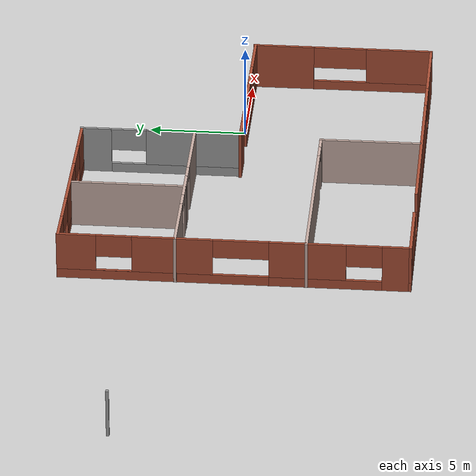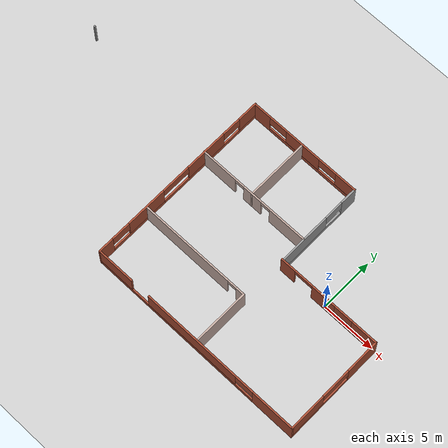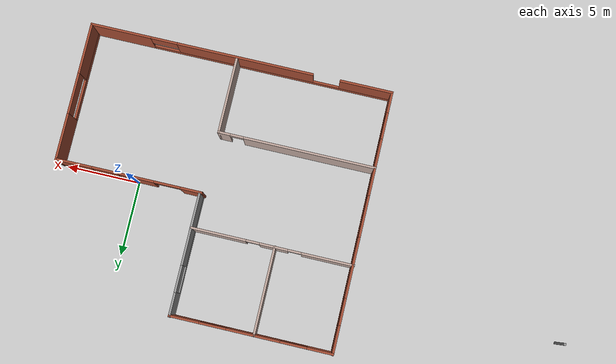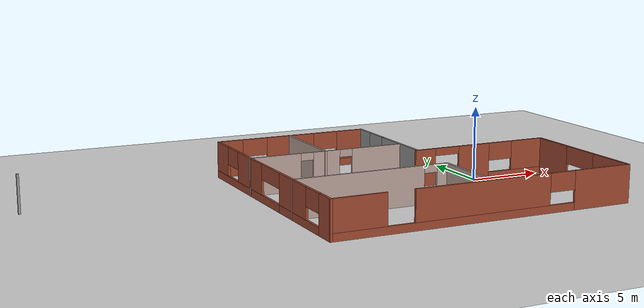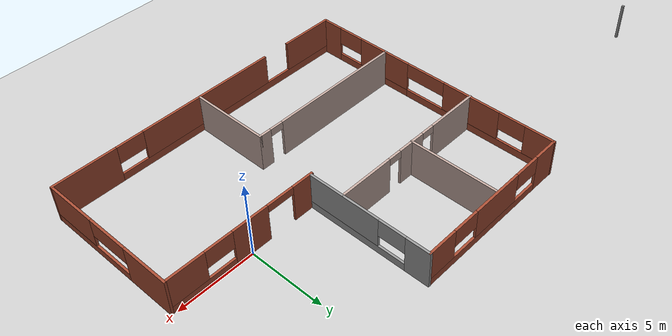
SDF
<sdf version="1.6">
 <world name="default">
  <model name="ground_plane">
   <static>1</static>
   <link name="link">
    <collision name="collision">
     <geometry><plane><normal>0 0 1</normal><size>100 100</size></plane></geometry>
     <surface><friction><ode><mu>100</mu><mu2>50</mu2></ode></friction></surface>
    </collision>
    <visual name="visual">
     <cast_shadows>0</cast_shadows>
     <geometry><plane><normal>0 0 1</normal><size>100 100</size></plane></geometry>
     <material>
      <script><uri>file://media/materials/scripts/gazebo.material</uri><name>Gazebo/Grey</name></script>
     </material>
    </visual>
   </link>
  </model>
  <model name="myoffice">
   <pose>-12.2241 -0.674506 0 0 -0 0</pose>
   <link name="Wall_21">
    <pose>12.5709 0.560445 0 0 -0 0</pose>
    <visual name="Wall_21_Visual_0">
     <pose>-4.25338 0 1.25 0 -0 0</pose>
     <geometry><box><size>1.49323 0.15 2.5</size></box></geometry>
     <material>
      <script><uri>file://media/materials/scripts/gazebo.material</uri><name>Gazebo/Bricks</name></script>
      <ambient>1 1 1 1</ambient>
     </material>
     <meta><layer>0</layer></meta>
    </visual>
    <collision name="Wall_21_Collision_0">
     <geometry><box><size>1.49323 0.15 2.5</size></box></geometry>
     <pose>-4.25338 0 1.25 0 -0 0</pose>
    </collision>
    <visual name="Wall_21_Visual_1">
     <pose>-0.514467 0 1.25 0 -0 0</pose>
     <geometry><box><size>2.3846 0.15 2.5</size></box></geometry>
     <material>
      <script><uri>file://media/materials/scripts/gazebo.material</uri><name>Gazebo/Bricks</name></script>
      <ambient>1 1 1 1</ambient>
     </material>
     <meta><layer>0</layer></meta>
    </visual>
    <collision name="Wall_21_Collision_1">
     <geometry><box><size>2.3846 0.15 2.5</size></box></geometry>
     <pose>-0.514467 0 1.25 0 -0 0</pose>
    </collision>
    <visual name="Wall_21_Visual_2">
     <pose>2.83892 0 0.25 0 -0 0</pose>
     <geometry><box><size>4.32217 0.15 0.5</size></box></geometry>
     <material>
      <script><uri>file://media/materials/scripts/gazebo.material</uri><name>Gazebo/Bricks</name></script>
      <ambient>1 1 1 1</ambient>
     </material>
     <meta><layer>0</layer></meta>
    </visual>
    <collision name="Wall_21_Collision_2">
     <geometry><box><size>4.32217 0.15 0.5</size></box></geometry>
     <pose>2.83892 0 0.25 0 -0 0</pose>
    </collision>
    <visual name="Wall_21_Visual_3">
     <pose>3.73892 0 1.5 0 -0 0</pose>
     <geometry><box><size>2.52217 0.15 2</size></box></geometry>
     <material>
      <script><uri>file://media/materials/scripts/gazebo.material</uri><name>Gazebo/Bricks</name></script>
      <ambient>1 1 1 1</ambient>
     </material>
     <meta><layer>0</layer></meta>
    </visual>
    <collision name="Wall_21_Collision_3">
     <geometry><box><size>2.52217 0.15 2</size></box></geometry>
     <pose>3.73892 0 1.5 0 -0 0</pose>
    </collision>
    <visual name="Wall_21_Visual_4">
     <pose>1.57783 0 1.9 0 -0 0</pose>
     <geometry><box><size>1.8 0.15 1.2</size></box></geometry>
     <material>
      <script><uri>file://media/materials/scripts/gazebo.material</uri><name>Gazebo/Bricks</name></script>
      <ambient>1 1 1 1</ambient>
     </material>
     <meta><layer>0</layer></meta>
    </visual>
    <collision name="Wall_21_Collision_4">
     <geometry><box><size>1.8 0.15 1.2</size></box></geometry>
     <pose>1.57783 0 1.9 0 -0 0</pose>
    </collision>
    <visual name="Wall_21_Visual_5">
     <pose>-2.60677 0 2.25 0 -0 0</pose>
     <geometry><box><size>1.8 0.15 0.5</size></box></geometry>
     <material>
      <script><uri>file://media/materials/scripts/gazebo.material</uri><name>Gazebo/Bricks</name></script>
      <ambient>1 1 1 1</ambient>
     </material>
     <meta><layer>0</layer></meta>
    </visual>
    <collision name="Wall_21_Collision_5">
     <geometry><box><size>1.8 0.15 0.5</size></box></geometry>
     <pose>-2.60677 0 2.25 0 -0 0</pose>
    </collision>
   </link>
   <link name="Wall_22">
    <pose>17.4959 -4.11456 0 0 0 -1.5708</pose>
    <visual name="Wall_22_Visual_0">
     <pose>-3.16191 0 1.25 0 -0 0</pose>
     <geometry><box><size>3.23784 0.15 2.5</size></box></geometry>
     <material>
      <script><uri>file://media/materials/scripts/gazebo.material</uri><name>Gazebo/Bricks</name></script>
      <ambient>1 1 1 1</ambient>
     </material>
     <meta><layer>0</layer></meta>
    </visual>
    <collision name="Wall_22_Collision_0">
     <geometry><box><size>3.23784 0.15 2.5</size></box></geometry>
     <pose>-3.16191 0 1.25 0 -0 0</pose>
    </collision>
    <visual name="Wall_22_Visual_1">
     <pose>1.61892 0 0.25 0 -0 0</pose>
     <geometry><box><size>6.32383 0.15 0.5</size></box></geometry>
     <material>
      <script><uri>file://media/materials/scripts/gazebo.material</uri><name>Gazebo/Bricks</name></script>
      <ambient>1 1 1 1</ambient>
     </material>
     <meta><layer>0</layer></meta>
    </visual>
    <collision name="Wall_22_Collision_1">
     <geometry><box><size>6.32383 0.15 0.5</size></box></geometry>
     <pose>1.61892 0 0.25 0 -0 0</pose>
    </collision>
    <visual name="Wall_22_Visual_2">
     <pose>3.01892 0 1.5 0 -0 0</pose>
     <geometry><box><size>3.52383 0.15 2</size></box></geometry>
     <material>
      <script><uri>file://media/materials/scripts/gazebo.material</uri><name>Gazebo/Bricks</name></script>
      <ambient>1 1 1 1</ambient>
     </material>
     <meta><layer>0</layer></meta>
    </visual>
    <collision name="Wall_22_Collision_2">
     <geometry><box><size>3.52383 0.15 2</size></box></geometry>
     <pose>3.01892 0 1.5 0 -0 0</pose>
    </collision>
    <visual name="Wall_22_Visual_3">
     <pose>-0.142992 0 1.9 0 -0 0</pose>
     <geometry><box><size>2.8 0.15 1.2</size></box></geometry>
     <material>
      <script><uri>file://media/materials/scripts/gazebo.material</uri><name>Gazebo/Bricks</name></script>
      <ambient>1 1 1 1</ambient>
     </material>
     <meta><layer>0</layer></meta>
    </visual>
    <collision name="Wall_22_Collision_3">
     <geometry><box><size>2.8 0.15 1.2</size></box></geometry>
     <pose>-0.142992 0 1.9 0 -0 0</pose>
    </collision>
   </link>
   <link name="Wall_23">
    <pose>7.19589 -8.82039 0 0 -0 3.14159</pose>
    <visual name="Wall_23_Visual_0">
     <pose>-8.29614 0 1.25 0 -0 0</pose>
     <geometry><box><size>4.15772 0.15 2.5</size></box></geometry>
     <material>
      <script><uri>file://media/materials/scripts/gazebo.material</uri><name>Gazebo/Bricks</name></script>
      <ambient>1 1 1 1</ambient>
     </material>
     <meta><layer>0</layer></meta>
    </visual>
    <collision name="Wall_23_Collision_0">
     <geometry><box><size>4.15772 0.15 2.5</size></box></geometry>
     <pose>-8.29614 0 1.25 0 -0 0</pose>
    </collision>
    <visual name="Wall_23_Visual_1">
     <pose>2.07886 0 0.25 0 -0 0</pose>
     <geometry><box><size>16.5923 0.15 0.5</size></box></geometry>
     <material>
      <script><uri>file://media/materials/scripts/gazebo.material</uri><name>Gazebo/Bricks</name></script>
      <ambient>1 1 1 1</ambient>
     </material>
     <meta><layer>0</layer></meta>
    </visual>
    <collision name="Wall_23_Collision_1">
     <geometry><box><size>16.5923 0.15 0.5</size></box></geometry>
     <pose>2.07886 0 0.25 0 -0 0</pose>
    </collision>
    <visual name="Wall_23_Visual_2">
     <pose>0.259691 0 1.5 0 -0 0</pose>
     <geometry><box><size>9.35394 0.15 2</size></box></geometry>
     <material>
      <script><uri>file://media/materials/scripts/gazebo.material</uri><name>Gazebo/Bricks</name></script>
      <ambient>1 1 1 1</ambient>
     </material>
     <meta><layer>0</layer></meta>
    </visual>
    <collision name="Wall_23_Collision_2">
     <geometry><box><size>9.35394 0.15 2</size></box></geometry>
     <pose>0.259691 0 1.5 0 -0 0</pose>
    </collision>
    <visual name="Wall_23_Visual_3">
     <pose>8.55583 0 1.5 0 -0 0</pose>
     <geometry><box><size>3.63834 0.15 2</size></box></geometry>
     <material>
      <script><uri>file://media/materials/scripts/gazebo.material</uri><name>Gazebo/Bricks</name></script>
      <ambient>1 1 1 1</ambient>
     </material>
     <meta><layer>0</layer></meta>
    </visual>
    <collision name="Wall_23_Collision_3">
     <geometry><box><size>3.63834 0.15 2</size></box></geometry>
     <pose>8.55583 0 1.5 0 -0 0</pose>
    </collision>
    <visual name="Wall_23_Visual_4">
     <pose>-5.31728 0 1.9 0 -0 0</pose>
     <geometry><box><size>1.8 0.15 1.2</size></box></geometry>
     <material>
      <script><uri>file://media/materials/scripts/gazebo.material</uri><name>Gazebo/Bricks</name></script>
      <ambient>1 1 1 1</ambient>
     </material>
     <meta><layer>0</layer></meta>
    </visual>
    <collision name="Wall_23_Collision_4">
     <geometry><box><size>1.8 0.15 1.2</size></box></geometry>
     <pose>-5.31728 0 1.9 0 -0 0</pose>
    </collision>
    <visual name="Wall_23_Visual_5">
     <pose>4.93666 0 1.9 0 -0 0</pose>
     <geometry><box><size>0.01 0.15 1.2</size></box></geometry>
     <material>
      <script><uri>file://media/materials/scripts/gazebo.material</uri><name>Gazebo/Bricks</name></script>
      <ambient>1 1 1 1</ambient>
     </material>
     <meta><layer>0</layer></meta>
    </visual>
    <collision name="Wall_23_Collision_5">
     <geometry><box><size>0.01 0.15 1.2</size></box></geometry>
     <pose>4.93666 0 1.9 0 -0 0</pose>
    </collision>
   </link>
   <link name="Wall_24">
    <pose>-3.10411 0 0 0 -0 1.5708</pose>
    <visual name="Wall_24_Visual_0">
     <pose>-8.15706 0 1.25 0 -0 0</pose>
     <geometry><box><size>1.47665 0.15 2.5</size></box></geometry>
     <material>
      <script><uri>file://media/materials/scripts/gazebo.material</uri><name>Gazebo/Bricks</name></script>
      <ambient>1 1 1 1</ambient>
     </material>
     <meta><layer>0</layer></meta>
    </visual>
    <collision name="Wall_24_Collision_0">
     <geometry><box><size>1.47665 0.15 2.5</size></box></geometry>
     <pose>-8.15706 0 1.25 0 -0 0</pose>
    </collision>
    <visual name="Wall_24_Visual_1">
     <pose>-4.58531 0 0.25 0 -0 0</pose>
     <geometry><box><size>5.66684 0.15 0.5</size></box></geometry>
     <material>
      <script><uri>file://media/materials/scripts/gazebo.material</uri><name>Gazebo/Bricks</name></script>
      <ambient>1 1 1 1</ambient>
     </material>
     <meta><layer>0</layer></meta>
    </visual>
    <collision name="Wall_24_Collision_1">
     <geometry><box><size>5.66684 0.15 0.5</size></box></geometry>
     <pose>-4.58531 0 0.25 0 -0 0</pose>
    </collision>
    <visual name="Wall_24_Visual_2">
     <pose>3.57175 0 0.25 0 -0 0</pose>
     <geometry><box><size>10.6473 0.15 0.5</size></box></geometry>
     <material>
      <script><uri>file://media/materials/scripts/gazebo.material</uri><name>Gazebo/Bricks</name></script>
      <ambient>1 1 1 1</ambient>
     </material>
     <meta><layer>0</layer></meta>
    </visual>
    <collision name="Wall_24_Collision_2">
     <geometry><box><size>10.6473 0.15 0.5</size></box></geometry>
     <pose>3.57175 0 0.25 0 -0 0</pose>
    </collision>
    <visual name="Wall_24_Visual_3">
     <pose>3.07537 0 1.5 0 -0 0</pose>
     <geometry><box><size>4.05453 0.15 2</size></box></geometry>
     <material>
      <script><uri>file://media/materials/scripts/gazebo.material</uri><name>Gazebo/Bricks</name></script>
      <ambient>1 1 1 1</ambient>
     </material>
     <meta><layer>0</layer></meta>
    </visual>
    <collision name="Wall_24_Collision_3">
     <geometry><box><size>4.05453 0.15 2</size></box></geometry>
     <pose>3.07537 0 1.5 0 -0 0</pose>
    </collision>
    <visual name="Wall_24_Visual_4">
     <pose>7.89901 0 1.5 0 -0 0</pose>
     <geometry><box><size>1.99275 0.15 2</size></box></geometry>
     <material>
      <script><uri>file://media/materials/scripts/gazebo.material</uri><name>Gazebo/Bricks</name></script>
      <ambient>1 1 1 1</ambient>
     </material>
     <meta><layer>0</layer></meta>
    </visual>
    <collision name="Wall_24_Collision_4">
     <geometry><box><size>1.99275 0.15 2</size></box></geometry>
     <pose>7.89901 0 1.5 0 -0 0</pose>
    </collision>
    <visual name="Wall_24_Visual_5">
     <pose>6.00263 0 0.5 0 -0 0</pose>
     <geometry><box><size>1.8 0.15 0.01</size></box></geometry>
     <material>
      <script><uri>file://media/materials/scripts/gazebo.material</uri><name>Gazebo/Bricks</name></script>
      <ambient>1 1 1 1</ambient>
     </material>
     <meta><layer>0</layer></meta>
    </visual>
    <collision name="Wall_24_Collision_5">
     <geometry><box><size>1.8 0.15 0.01</size></box></geometry>
     <pose>6.00263 0 0.5 0 -0 0</pose>
    </collision>
    <visual name="Wall_24_Visual_6">
     <pose>-3.68532 0 1.5 0 -0 0</pose>
     <geometry><box><size>3.86684 0.15 2</size></box></geometry>
     <material>
      <script><uri>file://media/materials/scripts/gazebo.material</uri><name>Gazebo/Bricks</name></script>
      <ambient>1 1 1 1</ambient>
     </material>
     <meta><layer>0</layer></meta>
    </visual>
    <collision name="Wall_24_Collision_6">
     <geometry><box><size>3.86684 0.15 2</size></box></geometry>
     <pose>-3.68532 0 1.5 0 -0 0</pose>
    </collision>
    <visual name="Wall_24_Visual_7">
     <pose>-3.68532 0 1.5 0 -0 0</pose>
     <geometry><box><size>3.86684 0.15 2</size></box></geometry>
     <material>
      <script><uri>file://media/materials/scripts/gazebo.material</uri><name>Gazebo/Bricks</name></script>
      <ambient>1 1 1 1</ambient>
     </material>
     <meta><layer>0</layer></meta>
    </visual>
    <collision name="Wall_24_Collision_7">
     <geometry><box><size>3.86684 0.15 2</size></box></geometry>
     <pose>-3.68532 0 1.5 0 -0 0</pose>
    </collision>
    <visual name="Wall_24_Visual_8">
     <pose>-6.51874 0 1.9 0 -0 0</pose>
     <geometry><box><size>1.8 0.15 1.2</size></box></geometry>
     <material>
      <script><uri>file://media/materials/scripts/gazebo.material</uri><name>Gazebo/Bricks</name></script>
      <ambient>1 1 1 1</ambient>
     </material>
     <meta><layer>0</layer></meta>
    </visual>
    <collision name="Wall_24_Collision_8">
     <geometry><box><size>1.8 0.15 1.2</size></box></geometry>
     <pose>-6.51874 0 1.9 0 -0 0</pose>
    </collision>
    <visual name="Wall_24_Visual_9">
     <pose>6.00263 0 1.9 0 -0 0</pose>
     <geometry><box><size>1.8 0.15 1.2</size></box></geometry>
     <material>
      <script><uri>file://media/materials/scripts/gazebo.material</uri><name>Gazebo/Bricks</name></script>
      <ambient>1 1 1 1</ambient>
     </material>
     <meta><layer>0</layer></meta>
    </visual>
    <collision name="Wall_24_Collision_9">
     <geometry><box><size>1.8 0.15 1.2</size></box></geometry>
     <pose>6.00263 0 1.9 0 -0 0</pose>
    </collision>
    <visual name="Wall_24_Visual_10">
     <pose>-0.351894 0 2 0 -0 0</pose>
     <geometry><box><size>2.8 0.15 1</size></box></geometry>
     <material>
      <script><uri>file://media/materials/scripts/gazebo.material</uri><name>Gazebo/Bricks</name></script>
      <ambient>1 1 1 1</ambient>
     </material>
     <meta><layer>0</layer></meta>
    </visual>
    <collision name="Wall_24_Collision_10">
     <geometry><box><size>2.8 0.15 1</size></box></geometry>
     <pose>-0.351894 0 2 0 -0 0</pose>
    </collision>
    <visual name="Wall_24_Visual_11">
     <pose>-0.351894 0 2 0 -0 0</pose>
     <geometry><box><size>2.8 0.15 1</size></box></geometry>
     <material>
      <script><uri>file://media/materials/scripts/gazebo.material</uri><name>Gazebo/Bricks</name></script>
      <ambient>1 1 1 1</ambient>
     </material>
     <meta><layer>0</layer></meta>
    </visual>
    <collision name="Wall_24_Collision_11">
     <geometry><box><size>2.8 0.15 1</size></box></geometry>
     <pose>-0.351894 0 2 0 -0 0</pose>
    </collision>
   </link>
   <link name="Wall_25">
    <pose>2.32089 8.8 0 0 -0 0</pose>
    <visual name="Wall_25_Visual_0">
     <pose>-4.60586 0 1.25 0 -0 0</pose>
     <geometry><box><size>1.78828 0.15 2.5</size></box></geometry>
     <material>
      <script><uri>file://media/materials/scripts/gazebo.material</uri><name>Gazebo/Bricks</name></script>
      <ambient>1 1 1 1</ambient>
     </material>
     <meta><layer>0</layer></meta>
    </visual>
    <collision name="Wall_25_Collision_0">
     <geometry><box><size>1.78828 0.15 2.5</size></box></geometry>
     <pose>-4.60586 0 1.25 0 -0 0</pose>
    </collision>
    <visual name="Wall_25_Visual_1">
     <pose>0.894142 0 0.25 0 -0 0</pose>
     <geometry><box><size>9.21171 0.15 0.5</size></box></geometry>
     <material>
      <script><uri>file://media/materials/scripts/gazebo.material</uri><name>Gazebo/Bricks</name></script>
      <ambient>1 1 1 1</ambient>
     </material>
     <meta><layer>0</layer></meta>
    </visual>
    <collision name="Wall_25_Collision_1">
     <geometry><box><size>9.21171 0.15 0.5</size></box></geometry>
     <pose>0.894142 0 0.25 0 -0 0</pose>
    </collision>
    <visual name="Wall_25_Visual_2">
     <pose>-0.128131 0 1.5 0 -0 0</pose>
     <geometry><box><size>3.56717 0.15 2</size></box></geometry>
     <material>
      <script><uri>file://media/materials/scripts/gazebo.material</uri><name>Gazebo/Bricks</name></script>
      <ambient>1 1 1 1</ambient>
     </material>
     <meta><layer>0</layer></meta>
    </visual>
    <collision name="Wall_25_Collision_2">
     <geometry><box><size>3.56717 0.15 2</size></box></geometry>
     <pose>-0.128131 0 1.5 0 -0 0</pose>
    </collision>
    <visual name="Wall_25_Visual_3">
     <pose>4.47773 0 1.5 0 -0 0</pose>
     <geometry><box><size>2.04455 0.15 2</size></box></geometry>
     <material>
      <script><uri>file://media/materials/scripts/gazebo.material</uri><name>Gazebo/Bricks</name></script>
      <ambient>1 1 1 1</ambient>
     </material>
     <meta><layer>0</layer></meta>
    </visual>
    <collision name="Wall_25_Collision_3">
     <geometry><box><size>2.04455 0.15 2</size></box></geometry>
     <pose>4.47773 0 1.5 0 -0 0</pose>
    </collision>
    <visual name="Wall_25_Visual_4">
     <pose>-2.81171 0 1.9 0 -0 0</pose>
     <geometry><box><size>1.8 0.15 1.2</size></box></geometry>
     <material>
      <script><uri>file://media/materials/scripts/gazebo.material</uri><name>Gazebo/Bricks</name></script>
      <ambient>1 1 1 1</ambient>
     </material>
     <meta><layer>0</layer></meta>
    </visual>
    <collision name="Wall_25_Collision_4">
     <geometry><box><size>1.8 0.15 1.2</size></box></geometry>
     <pose>-2.81171 0 1.9 0 -0 0</pose>
    </collision>
    <visual name="Wall_25_Visual_5">
     <pose>2.55545 0 1.9 0 -0 0</pose>
     <geometry><box><size>1.8 0.15 1.2</size></box></geometry>
     <material>
      <script><uri>file://media/materials/scripts/gazebo.material</uri><name>Gazebo/Bricks</name></script>
      <ambient>1 1 1 1</ambient>
     </material>
     <meta><layer>0</layer></meta>
    </visual>
    <collision name="Wall_25_Collision_5">
     <geometry><box><size>1.8 0.15 1.2</size></box></geometry>
     <pose>2.55545 0 1.9 0 -0 0</pose>
    </collision>
   </link>
   <link name="Wall_26">
    <pose>7.74589 4.75 0 0 0 -1.5708</pose>
    <visual name="Wall_26_Visual_0">
     <pose>-3.32861 0 1.25 0 -0 0</pose>
     <geometry><box><size>1.63356 0.15 2.5</size></box></geometry>
     <material>
      <script><uri>file://media/materials/scripts/gazebo.material</uri><name>Gazebo/Grey</name></script>
      <ambient>1 1 1 1</ambient>
     </material>
     <meta><layer>0</layer></meta>
    </visual>
    <collision name="Wall_26_Collision_0">
     <geometry><box><size>1.63356 0.15 2.5</size></box></geometry>
     <pose>-3.32861 0 1.25 0 -0 0</pose>
    </collision>
    <visual name="Wall_26_Visual_1">
     <pose>0.816778 0 0.25 0 -0 0</pose>
     <geometry><box><size>6.65722 0.15 0.5</size></box></geometry>
     <material>
      <script><uri>file://media/materials/scripts/gazebo.material</uri><name>Gazebo/Grey</name></script>
      <ambient>1 1 1 1</ambient>
     </material>
     <meta><layer>0</layer></meta>
    </visual>
    <collision name="Wall_26_Collision_1">
     <geometry><box><size>6.65722 0.15 0.5</size></box></geometry>
     <pose>0.816778 0 0.25 0 -0 0</pose>
    </collision>
    <visual name="Wall_26_Visual_2">
     <pose>1.71678 0 1.5 0 -0 0</pose>
     <geometry><box><size>4.85722 0.15 2</size></box></geometry>
     <material>
      <script><uri>file://media/materials/scripts/gazebo.material</uri><name>Gazebo/Grey</name></script>
      <ambient>1 1 1 1</ambient>
     </material>
     <meta><layer>0</layer></meta>
    </visual>
    <collision name="Wall_26_Collision_2">
     <geometry><box><size>4.85722 0.15 2</size></box></geometry>
     <pose>1.71678 0 1.5 0 -0 0</pose>
    </collision>
    <visual name="Wall_26_Visual_3">
     <pose>-1.61183 0 1.9 0 -0 0</pose>
     <geometry><box><size>1.8 0.15 1.2</size></box></geometry>
     <material>
      <script><uri>file://media/materials/scripts/gazebo.material</uri><name>Gazebo/Grey</name></script>
      <ambient>1 1 1 1</ambient>
     </material>
     <meta><layer>0</layer></meta>
    </visual>
    <collision name="Wall_26_Collision_3">
     <geometry><box><size>1.8 0.15 1.2</size></box></geometry>
     <pose>-1.61183 0 1.9 0 -0 0</pose>
    </collision>
   </link>
   <link name="Wall_29">
    <pose>2.28445 2.93924 0 0 -0 0</pose>
    <visual name="Wall_29_Visual_0">
     <pose>-3.71411 0 1.25 0 -0 0</pose>
     <geometry><box><size>3.57178 0.15 2.5</size></box></geometry>
     <material>
      <script><uri>file://media/materials/scripts/gazebo.material</uri><name>Gazebo/Grey</name></script>
      <ambient>0.760784 0.662745 0.627451 1</ambient>
     </material>
     <meta><layer>0</layer></meta>
    </visual>
    <collision name="Wall_29_Collision_0">
     <geometry><box><size>3.57178 0.15 2.5</size></box></geometry>
     <pose>-3.71411 0 1.25 0 -0 0</pose>
    </collision>
    <visual name="Wall_29_Visual_1">
     <pose>-0.075264 0 1.25 0 -0 0</pose>
     <geometry><box><size>1.90591 0.15 2.5</size></box></geometry>
     <material>
      <script><uri>file://media/materials/scripts/gazebo.material</uri><name>Gazebo/Grey</name></script>
      <ambient>0.760784 0.662745 0.627451 1</ambient>
     </material>
     <meta><layer>0</layer></meta>
    </visual>
    <collision name="Wall_29_Collision_1">
     <geometry><box><size>1.90591 0.15 2.5</size></box></geometry>
     <pose>-0.075264 0 1.25 0 -0 0</pose>
    </collision>
    <visual name="Wall_29_Visual_2">
     <pose>3.63885 0 1.25 0 -0 0</pose>
     <geometry><box><size>3.72231 0.15 2.5</size></box></geometry>
     <material>
      <script><uri>file://media/materials/scripts/gazebo.material</uri><name>Gazebo/Grey</name></script>
      <ambient>0.760784 0.662745 0.627451 1</ambient>
     </material>
     <meta><layer>0</layer></meta>
    </visual>
    <collision name="Wall_29_Collision_2">
     <geometry><box><size>3.72231 0.15 2.5</size></box></geometry>
     <pose>3.63885 0 1.25 0 -0 0</pose>
    </collision>
    <visual name="Wall_29_Visual_3">
     <pose>-1.47822 0 2.25 0 -0 0</pose>
     <geometry><box><size>0.9 0.15 0.5</size></box></geometry>
     <material>
      <script><uri>file://media/materials/scripts/gazebo.material</uri><name>Gazebo/Grey</name></script>
      <ambient>0.760784 0.662745 0.627451 1</ambient>
     </material>
     <meta><layer>0</layer></meta>
    </visual>
    <collision name="Wall_29_Collision_3">
     <geometry><box><size>0.9 0.15 0.5</size></box></geometry>
     <pose>-1.47822 0 2.25 0 -0 0</pose>
    </collision>
    <visual name="Wall_29_Visual_4">
     <pose>1.32769 0 2.25 0 -0 0</pose>
     <geometry><box><size>0.9 0.15 0.5</size></box></geometry>
     <material>
      <script><uri>file://media/materials/scripts/gazebo.material</uri><name>Gazebo/Grey</name></script>
      <ambient>0.760784 0.662745 0.627451 1</ambient>
     </material>
     <meta><layer>0</layer></meta>
    </visual>
    <collision name="Wall_29_Collision_4">
     <geometry><box><size>0.9 0.15 0.5</size></box></geometry>
     <pose>1.32769 0 2.25 0 -0 0</pose>
    </collision>
   </link>
   <link name="Wall_31">
    <collision name="Wall_31_Collision">
     <geometry><box><size>6 0.15 2.5</size></box></geometry>
     <pose>0 0 1.25 0 -0 0</pose>
    </collision>
    <visual name="Wall_31_Visual">
     <pose>0 0 1.25 0 -0 0</pose>
     <geometry><box><size>6 0.15 2.5</size></box></geometry>
     <material>
      <script><uri>file://media/materials/scripts/gazebo.material</uri><name>Gazebo/Grey</name></script>
      <ambient>0.760784 0.662745 0.627451 1</ambient>
     </material>
     <meta><layer>0</layer></meta>
    </visual>
    <pose>2.1321 5.8419 0 0 0 -1.5708</pose>
   </link>
   <link name="Wall_34">
    <pose>2.19029 -3.62845 0 0 -0 0</pose>
    <visual name="Wall_34_Visual_0">
     <pose>-0.875699 0 1.25 0 -0 0</pose>
     <geometry><box><size>8.9986 0.15 2.5</size></box></geometry>
     <material>
      <script><uri>file://media/materials/scripts/gazebo.material</uri><name>Gazebo/Grey</name></script>
      <ambient>0.760784 0.662745 0.627451 1</ambient>
     </material>
     <meta><layer>0</layer></meta>
    </visual>
    <collision name="Wall_34_Collision_0">
     <geometry><box><size>8.9986 0.15 2.5</size></box></geometry>
     <pose>-0.875699 0 1.25 0 -0 0</pose>
    </collision>
    <visual name="Wall_34_Visual_1">
     <pose>4.9493 0 1.25 0 -0 0</pose>
     <geometry><box><size>0.851399 0.15 2.5</size></box></geometry>
     <material>
      <script><uri>file://media/materials/scripts/gazebo.material</uri><name>Gazebo/Grey</name></script>
      <ambient>0.760784 0.662745 0.627451 1</ambient>
     </material>
     <meta><layer>0</layer></meta>
    </visual>
    <collision name="Wall_34_Collision_1">
     <geometry><box><size>0.851399 0.15 2.5</size></box></geometry>
     <pose>4.9493 0 1.25 0 -0 0</pose>
    </collision>
    <visual name="Wall_34_Visual_2">
     <pose>4.0736 0 2.25 0 -0 0</pose>
     <geometry><box><size>0.9 0.15 0.5</size></box></geometry>
     <material>
      <script><uri>file://media/materials/scripts/gazebo.material</uri><name>Gazebo/Grey</name></script>
      <ambient>0.760784 0.662745 0.627451 1</ambient>
     </material>
     <meta><layer>0</layer></meta>
    </visual>
    <collision name="Wall_34_Collision_2">
     <geometry><box><size>0.9 0.15 0.5</size></box></geometry>
     <pose>4.0736 0 2.25 0 -0 0</pose>
    </collision>
   </link>
   <link name="Wall_35">
    <collision name="Wall_35_Collision">
     <geometry><box><size>5.25 0.15 2.5</size></box></geometry>
     <pose>0 0 1.25 0 -0 0</pose>
    </collision>
    <visual name="Wall_35_Visual">
     <pose>0 0 1.25 0 -0 0</pose>
     <geometry><box><size>5.25 0.15 2.5</size></box></geometry>
     <material>
      <script><uri>file://media/materials/scripts/gazebo.material</uri><name>Gazebo/Grey</name></script>
      <ambient>0.760784 0.662745 0.627451 1</ambient>
     </material>
     <meta><layer>0</layer></meta>
    </visual>
    <pose>7.49029 -6.17845 0 0 0 -1.5708</pose>
   </link>
   <link name="Wall_6">
    <collision name="Wall_6_Collision">
     <geometry><box><size>0.15 0.15 2.5</size></box></geometry>
     <pose>0 0 1.25 0 -0 0</pose>
    </collision>
    <visual name="Wall_6_Visual">
     <pose>0 0 1.25 0 -0 0</pose>
     <geometry><box><size>0.15 0.15 2.5</size></box></geometry>
     <material>
      <script><uri>file://media/materials/scripts/gazebo.material</uri><name>Gazebo/Grey</name></script>
      <ambient>1 1 1 1</ambient>
     </material>
     <meta><layer>0</layer></meta>
    </visual>
    <pose>-17.4959 4.78352 0 0 -0 0</pose>
   </link>
   <static>1</static>
  </model>
 </world>
</sdf>
